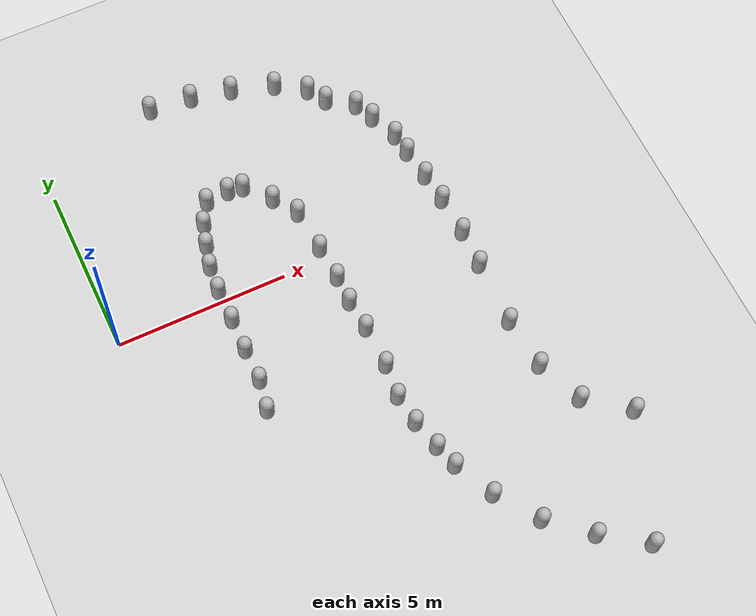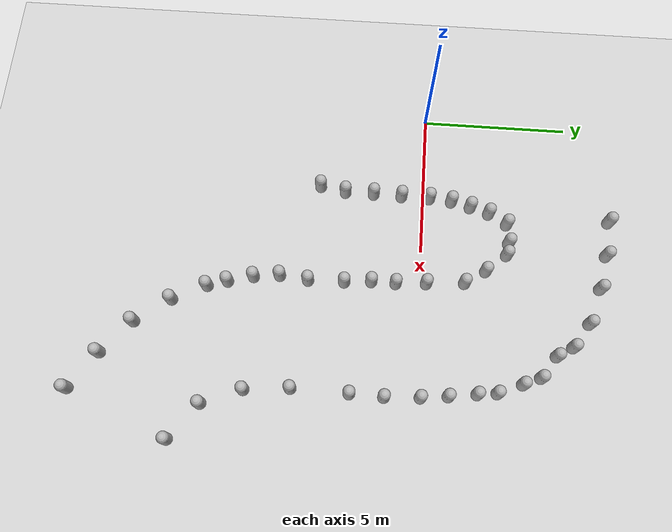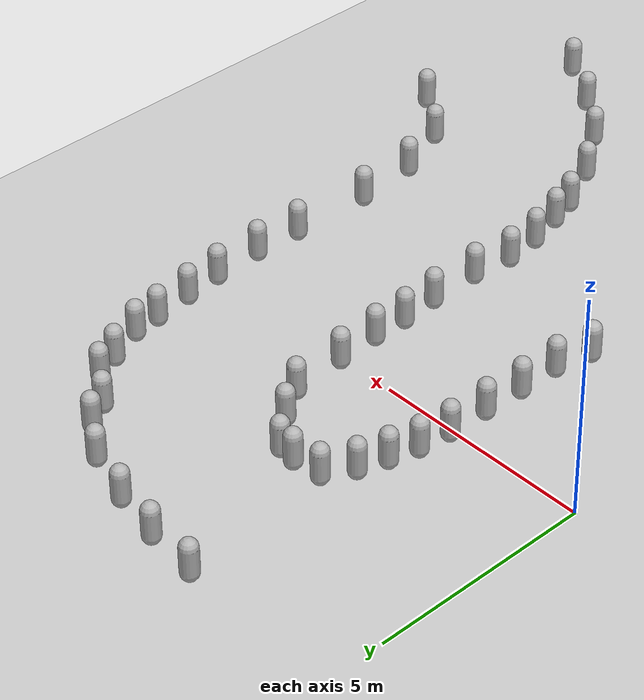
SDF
<sdf version="1.10">
 <world name="empty">
  <model name="ground_plane">
   <static>true</static>
   <link name="link">
    <collision name="collision">
     <geometry><plane><normal>0 0 1</normal><size>100 100</size></plane></geometry>
    </collision>
    <visual name="visual">
     <geometry><plane><normal>0 0 1</normal><size>100 100</size></plane></geometry>
     <material>
      <ambient>0.800000012 0.800000012 0.800000012 1</ambient>
      <diffuse>0.800000012 0.800000012 0.800000012 1</diffuse>
      <specular>0.800000012 0.800000012 0.800000012 1</specular>
     </material>
    </visual>
    <inertial>
     <mass>1</mass>
     <inertia><ixx>1</ixx><ixy>0</ixy><ixz>0</ixz><iyy>1</iyy><iyz>0</iyz><izz>1</izz></inertia>
    </inertial>
   </link>
  </model>
  <model name="capsule">
   <pose>5.0067120201532003 2.8950546282145462 0.49999999970893311 0 0 0</pose>
   <link name="capsule_link">
    <inertial>
     <inertia>
      <ixx>0.074153999999999998</ixx>
      <ixy>0</ixy>
      <ixz>0</ixz>
      <iyy>0.074153999999999998</iyy>
      <iyz>0</iyz>
      <izz>0.018769000000000001</izz>
     </inertia>
     <mass>1</mass>
    </inertial>
    <collision name="capsule_collision">
     <geometry>
      <capsule><radius>0.20000000000000001</radius><length>0.59999999999999998</length></capsule>
     </geometry>
    </collision>
    <visual name="capsule_visual">
     <geometry>
      <capsule><radius>0.20000000000000001</radius><length>0.59999999999999998</length></capsule>
     </geometry>
     <material>
      <ambient>0.300000012 0.300000012 0.300000012 1</ambient>
      <diffuse>0.699999988 0.699999988 0.699999988 1</diffuse>
      <specular>1 1 1 1</specular>
     </material>
    </visual>
   </link>
   <static>false</static>
  </model>
  <model name="capsule_1">
   <pose>6.0918446914484834 1.4883130985771231 0.49999999970893311 0 0 0</pose>
   <link name="capsule_link">
    <inertial>
     <inertia>
      <ixx>0.074153999999999998</ixx>
      <ixy>0</ixy>
      <ixz>0</ixz>
      <iyy>0.074153999999999998</iyy>
      <iyz>0</iyz>
      <izz>0.018769000000000001</izz>
     </inertia>
     <mass>1</mass>
    </inertial>
    <collision name="capsule_collision">
     <geometry>
      <capsule><radius>0.20000000000000001</radius><length>0.59999999999999998</length></capsule>
     </geometry>
    </collision>
    <visual name="capsule_visual">
     <geometry>
      <capsule><radius>0.20000000000000001</radius><length>0.59999999999999998</length></capsule>
     </geometry>
     <material>
      <ambient>0.300000012 0.300000012 0.300000012 1</ambient>
      <diffuse>0.699999988 0.699999988 0.699999988 1</diffuse>
      <specular>1 1 1 1</specular>
     </material>
    </visual>
   </link>
   <static>false</static>
  </model>
  <model name="capsule_2">
   <pose>6.2528500556945801 -0.81414926052093506 0.499999999902001 0 0 0</pose>
   <link name="capsule_link">
    <inertial>
     <inertia>
      <ixx>0.074153999999999998</ixx>
      <ixy>0</ixy>
      <ixz>0</ixz>
      <iyy>0.074153999999999998</iyy>
      <iyz>0</iyz>
      <izz>0.018769000000000001</izz>
     </inertia>
     <mass>1</mass>
    </inertial>
    <collision name="capsule_collision">
     <geometry>
      <capsule><radius>0.20000000000000001</radius><length>0.59999999999999998</length></capsule>
     </geometry>
    </collision>
    <visual name="capsule_visual">
     <geometry>
      <capsule><radius>0.20000000000000001</radius><length>0.59999999999999998</length></capsule>
     </geometry>
     <material>
      <ambient>0.300000012 0.300000012 0.300000012 1</ambient>
      <diffuse>0.699999988 0.699999988 0.699999988 1</diffuse>
      <specular>1 1 1 1</specular>
     </material>
    </visual>
   </link>
   <static>false</static>
  </model>
  <model name="capsule_3">
   <pose>6.243919849395752 -1.6323399543762207 0.499999999902001 0 0 0</pose>
   <link name="capsule_link">
    <inertial>
     <inertia>
      <ixx>0.074153999999999998</ixx>
      <ixy>0</ixy>
      <ixz>0</ixz>
      <iyy>0.074153999999999998</iyy>
      <iyz>0</iyz>
      <izz>0.018769000000000001</izz>
     </inertia>
     <mass>1</mass>
    </inertial>
    <collision name="capsule_collision">
     <geometry>
      <capsule><radius>0.20000000000000001</radius><length>0.59999999999999998</length></capsule>
     </geometry>
    </collision>
    <visual name="capsule_visual">
     <geometry>
      <capsule><radius>0.20000000000000001</radius><length>0.59999999999999998</length></capsule>
     </geometry>
     <material>
      <ambient>0.300000012 0.300000012 0.300000012 1</ambient>
      <diffuse>0.699999988 0.699999988 0.699999988 1</diffuse>
      <specular>1 1 1 1</specular>
     </material>
    </visual>
   </link>
   <static>false</static>
  </model>
  <model name="capsule_4">
   <pose>6.3168603929638234 -2.5392485538346374 0.49999999970893311 0 0 0</pose>
   <link name="capsule_link">
    <inertial>
     <inertia>
      <ixx>0.074153999999999998</ixx>
      <ixy>0</ixy>
      <ixz>0</ixz>
      <iyy>0.074153999999999998</iyy>
      <iyz>0</iyz>
      <izz>0.018769000000000001</izz>
     </inertia>
     <mass>1</mass>
    </inertial>
    <collision name="capsule_collision">
     <geometry>
      <capsule><radius>0.20000000000000001</radius><length>0.59999999999999998</length></capsule>
     </geometry>
    </collision>
    <visual name="capsule_visual">
     <geometry>
      <capsule><radius>0.20000000000000001</radius><length>0.59999999999999998</length></capsule>
     </geometry>
     <material>
      <ambient>0.300000012 0.300000012 0.300000012 1</ambient>
      <diffuse>0.699999988 0.699999988 0.699999988 1</diffuse>
      <specular>1 1 1 1</specular>
     </material>
    </visual>
   </link>
   <static>false</static>
  </model>
  <model name="capsule_5">
   <pose>6.3373173031823287 -3.7541128518168598 0.49999999970893311 0 0 0</pose>
   <link name="capsule_link">
    <inertial>
     <inertia>
      <ixx>0.074153999999999998</ixx>
      <ixy>0</ixy>
      <ixz>0</ixz>
      <iyy>0.074153999999999998</iyy>
      <iyz>0</iyz>
      <izz>0.018769000000000001</izz>
     </inertia>
     <mass>1</mass>
    </inertial>
    <collision name="capsule_collision">
     <geometry>
      <capsule><radius>0.20000000000000001</radius><length>0.59999999999999998</length></capsule>
     </geometry>
    </collision>
    <visual name="capsule_visual">
     <geometry>
      <capsule><radius>0.20000000000000001</radius><length>0.59999999999999998</length></capsule>
     </geometry>
     <material>
      <ambient>0.300000012 0.300000012 0.300000012 1</ambient>
      <diffuse>0.699999988 0.699999988 0.699999988 1</diffuse>
      <specular>1 1 1 1</specular>
     </material>
    </visual>
   </link>
   <static>false</static>
  </model>
  <model name="capsule_6">
   <pose>3.8893697356851402 2.892807902579547 0.49999999970893311 0 0 0</pose>
   <link name="capsule_link">
    <inertial>
     <inertia>
      <ixx>0.074153999999999998</ixx>
      <ixy>0</ixy>
      <ixz>0</ixz>
      <iyy>0.074153999999999998</iyy>
      <iyz>0</iyz>
      <izz>0.018769000000000001</izz>
     </inertia>
     <mass>1</mass>
    </inertial>
    <collision name="capsule_collision">
     <geometry>
      <capsule><radius>0.20000000000000001</radius><length>0.59999999999999998</length></capsule>
     </geometry>
    </collision>
    <visual name="capsule_visual">
     <geometry>
      <capsule><radius>0.20000000000000001</radius><length>0.59999999999999998</length></capsule>
     </geometry>
     <material>
      <ambient>0.300000012 0.300000012 0.300000012 1</ambient>
      <diffuse>0.699999988 0.699999988 0.699999988 1</diffuse>
      <specular>1 1 1 1</specular>
     </material>
    </visual>
   </link>
   <static>false</static>
  </model>
  <model name="capsule_7">
   <pose>3.3342243519569452 1.6304961430569558 0.49999999970893311 0 0 0</pose>
   <link name="capsule_link">
    <inertial>
     <inertia>
      <ixx>0.074153999999999998</ixx>
      <ixy>0</ixy>
      <ixz>0</ixz>
      <iyy>0.074153999999999998</iyy>
      <iyz>0</iyz>
      <izz>0.018769000000000001</izz>
     </inertia>
     <mass>1</mass>
    </inertial>
    <collision name="capsule_collision">
     <geometry>
      <capsule><radius>0.20000000000000001</radius><length>0.59999999999999998</length></capsule>
     </geometry>
    </collision>
    <visual name="capsule_visual">
     <geometry>
      <capsule><radius>0.20000000000000001</radius><length>0.59999999999999998</length></capsule>
     </geometry>
     <material>
      <ambient>0.300000012 0.300000012 0.300000012 1</ambient>
      <diffuse>0.699999988 0.699999988 0.699999988 1</diffuse>
      <specular>1 1 1 1</specular>
     </material>
    </visual>
   </link>
   <static>false</static>
  </model>
  <model name="capsule_8">
   <pose>3.1660099029541016 0.97390604019165039 0.499999999902001 0 0 0</pose>
   <link name="capsule_link">
    <inertial>
     <inertia>
      <ixx>0.074153999999999998</ixx>
      <ixy>0</ixy>
      <ixz>0</ixz>
      <iyy>0.074153999999999998</iyy>
      <iyz>0</iyz>
      <izz>0.018769000000000001</izz>
     </inertia>
     <mass>1</mass>
    </inertial>
    <collision name="capsule_collision">
     <geometry>
      <capsule><radius>0.20000000000000001</radius><length>0.59999999999999998</length></capsule>
     </geometry>
    </collision>
    <visual name="capsule_visual">
     <geometry>
      <capsule><radius>0.20000000000000001</radius><length>0.59999999999999998</length></capsule>
     </geometry>
     <material>
      <ambient>0.300000012 0.300000012 0.300000012 1</ambient>
      <diffuse>0.699999988 0.699999988 0.699999988 1</diffuse>
      <specular>1 1 1 1</specular>
     </material>
    </visual>
   </link>
   <static>false</static>
  </model>
  <model name="capsule_9">
   <pose>3.0937800407409668 0.21299627423286438 0.499999999902001 0 0 0</pose>
   <link name="capsule_link">
    <inertial>
     <inertia>
      <ixx>0.074153999999999998</ixx>
      <ixy>0</ixy>
      <ixz>0</ixz>
      <iyy>0.074153999999999998</iyy>
      <iyz>0</iyz>
      <izz>0.018769000000000001</izz>
     </inertia>
     <mass>1</mass>
    </inertial>
    <collision name="capsule_collision">
     <geometry>
      <capsule><radius>0.20000000000000001</radius><length>0.59999999999999998</length></capsule>
     </geometry>
    </collision>
    <visual name="capsule_visual">
     <geometry>
      <capsule><radius>0.20000000000000001</radius><length>0.59999999999999998</length></capsule>
     </geometry>
     <material>
      <ambient>0.300000012 0.300000012 0.300000012 1</ambient>
      <diffuse>0.699999988 0.699999988 0.699999988 1</diffuse>
      <specular>1 1 1 1</specular>
     </material>
    </visual>
   </link>
   <static>false</static>
  </model>
  <model name="capsule_10">
   <pose>3.052570104598999 -1.7299884557723999 0.499999999902001 0 0 0</pose>
   <link name="capsule_link">
    <inertial>
     <inertia>
      <ixx>0.074153999999999998</ixx>
      <ixy>0</ixy>
      <ixz>0</ixz>
      <iyy>0.074153999999999998</iyy>
      <iyz>0</iyz>
      <izz>0.018769000000000001</izz>
     </inertia>
     <mass>1</mass>
    </inertial>
    <collision name="capsule_collision">
     <geometry>
      <capsule><radius>0.20000000000000001</radius><length>0.59999999999999998</length></capsule>
     </geometry>
    </collision>
    <visual name="capsule_visual">
     <geometry>
      <capsule><radius>0.20000000000000001</radius><length>0.59999999999999998</length></capsule>
     </geometry>
     <material>
      <ambient>0.300000012 0.300000012 0.300000012 1</ambient>
      <diffuse>0.699999988 0.699999988 0.699999988 1</diffuse>
      <specular>1 1 1 1</specular>
     </material>
    </visual>
   </link>
   <static>false</static>
  </model>
  <model name="capsule_11">
   <pose>2.8815019130706787 -3.5840599536895752 0.499999999902001 0 0 0</pose>
   <link name="capsule_link">
    <inertial>
     <inertia>
      <ixx>0.074153999999999998</ixx>
      <ixy>0</ixy>
      <ixz>0</ixz>
      <iyy>0.074153999999999998</iyy>
      <iyz>0</iyz>
      <izz>0.018769000000000001</izz>
     </inertia>
     <mass>1</mass>
    </inertial>
    <collision name="capsule_collision">
     <geometry>
      <capsule><radius>0.20000000000000001</radius><length>0.59999999999999998</length></capsule>
     </geometry>
    </collision>
    <visual name="capsule_visual">
     <geometry>
      <capsule><radius>0.20000000000000001</radius><length>0.59999999999999998</length></capsule>
     </geometry>
     <material>
      <ambient>0.300000012 0.300000012 0.300000012 1</ambient>
      <diffuse>0.699999988 0.699999988 0.699999988 1</diffuse>
      <specular>1 1 1 1</specular>
     </material>
    </visual>
   </link>
   <static>false</static>
  </model>
  <model name="capsule_12">
   <pose>9.9779636401044876 -4.026470124686111 0.49999999970893311 0 0 0</pose>
   <link name="capsule_link">
    <inertial>
     <inertia>
      <ixx>0.074153999999999998</ixx>
      <ixy>0</ixy>
      <ixz>0</ixz>
      <iyy>0.074153999999999998</iyy>
      <iyz>0</iyz>
      <izz>0.018769000000000001</izz>
     </inertia>
     <mass>1</mass>
    </inertial>
    <collision name="capsule_collision">
     <geometry>
      <capsule><radius>0.20000000000000001</radius><length>0.59999999999999998</length></capsule>
     </geometry>
    </collision>
    <visual name="capsule_visual">
     <geometry>
      <capsule><radius>0.20000000000000001</radius><length>0.59999999999999998</length></capsule>
     </geometry>
     <material>
      <ambient>0.300000012 0.300000012 0.300000012 1</ambient>
      <diffuse>0.699999988 0.699999988 0.699999988 1</diffuse>
      <specular>1 1 1 1</specular>
     </material>
    </visual>
   </link>
   <static>false</static>
  </model>
  <model name="capsule_13">
   <pose>10.02226374670887 -2.131533841577105 0.49999999970893311 0 0 0</pose>
   <link name="capsule_link">
    <inertial>
     <inertia>
      <ixx>0.074153999999999998</ixx>
      <ixy>0</ixy>
      <ixz>0</ixz>
      <iyy>0.074153999999999998</iyy>
      <iyz>0</iyz>
      <izz>0.018769000000000001</izz>
     </inertia>
     <mass>1</mass>
    </inertial>
    <collision name="capsule_collision">
     <geometry>
      <capsule><radius>0.20000000000000001</radius><length>0.59999999999999998</length></capsule>
     </geometry>
    </collision>
    <visual name="capsule_visual">
     <geometry>
      <capsule><radius>0.20000000000000001</radius><length>0.59999999999999998</length></capsule>
     </geometry>
     <material>
      <ambient>0.300000012 0.300000012 0.300000012 1</ambient>
      <diffuse>0.699999988 0.699999988 0.699999988 1</diffuse>
      <specular>1 1 1 1</specular>
     </material>
    </visual>
   </link>
   <static>false</static>
  </model>
  <model name="capsule_14">
   <pose>10.001105701659302 0.14882972912458661 0.49999999970893311 0 0 0</pose>
   <link name="capsule_link">
    <inertial>
     <inertia>
      <ixx>0.074153999999999998</ixx>
      <ixy>0</ixy>
      <ixz>0</ixz>
      <iyy>0.074153999999999998</iyy>
      <iyz>0</iyz>
      <izz>0.018769000000000001</izz>
     </inertia>
     <mass>1</mass>
    </inertial>
    <collision name="capsule_collision">
     <geometry>
      <capsule><radius>0.20000000000000001</radius><length>0.59999999999999998</length></capsule>
     </geometry>
    </collision>
    <visual name="capsule_visual">
     <geometry>
      <capsule><radius>0.20000000000000001</radius><length>0.59999999999999998</length></capsule>
     </geometry>
     <material>
      <ambient>0.300000012 0.300000012 0.300000012 1</ambient>
      <diffuse>0.699999988 0.699999988 0.699999988 1</diffuse>
      <specular>1 1 1 1</specular>
     </material>
    </visual>
   </link>
   <static>false</static>
  </model>
  <model name="capsule_15">
   <pose>9.7759025483170632 1.9615490699600033 0.49999999970893311 0 0 0</pose>
   <link name="capsule_link">
    <inertial>
     <inertia>
      <ixx>0.074153999999999998</ixx>
      <ixy>0</ixy>
      <ixz>0</ixz>
      <iyy>0.074153999999999998</iyy>
      <iyz>0</iyz>
      <izz>0.018769000000000001</izz>
     </inertia>
     <mass>1</mass>
    </inertial>
    <collision name="capsule_collision">
     <geometry>
      <capsule><radius>0.20000000000000001</radius><length>0.59999999999999998</length></capsule>
     </geometry>
    </collision>
    <visual name="capsule_visual">
     <geometry>
      <capsule><radius>0.20000000000000001</radius><length>0.59999999999999998</length></capsule>
     </geometry>
     <material>
      <ambient>0.300000012 0.300000012 0.300000012 1</ambient>
      <diffuse>0.699999988 0.699999988 0.699999988 1</diffuse>
      <specular>1 1 1 1</specular>
     </material>
    </visual>
   </link>
   <static>false</static>
  </model>
  <model name="capsule_16">
   <pose>9.362642894293721 3.4224772201174152 0.49999999970893311 0 0 0</pose>
   <link name="capsule_link">
    <inertial>
     <inertia>
      <ixx>0.074153999999999998</ixx>
      <ixy>0</ixy>
      <ixz>0</ixz>
      <iyy>0.074153999999999998</iyy>
      <iyz>0</iyz>
      <izz>0.018769000000000001</izz>
     </inertia>
     <mass>1</mass>
    </inertial>
    <collision name="capsule_collision">
     <geometry>
      <capsule><radius>0.20000000000000001</radius><length>0.59999999999999998</length></capsule>
     </geometry>
    </collision>
    <visual name="capsule_visual">
     <geometry>
      <capsule><radius>0.20000000000000001</radius><length>0.59999999999999998</length></capsule>
     </geometry>
     <material>
      <ambient>0.300000012 0.300000012 0.300000012 1</ambient>
      <diffuse>0.699999988 0.699999988 0.699999988 1</diffuse>
      <specular>1 1 1 1</specular>
     </material>
    </visual>
   </link>
   <static>false</static>
  </model>
  <model name="capsule_17">
   <pose>8.3764287410841902 4.5237605050009844 0.49999999970893311 0 0 0</pose>
   <link name="capsule_link">
    <inertial>
     <inertia>
      <ixx>0.074153999999999998</ixx>
      <ixy>0</ixy>
      <ixz>0</ixz>
      <iyy>0.074153999999999998</iyy>
      <iyz>0</iyz>
      <izz>0.018769000000000001</izz>
     </inertia>
     <mass>1</mass>
    </inertial>
    <collision name="capsule_collision">
     <geometry>
      <capsule><radius>0.20000000000000001</radius><length>0.59999999999999998</length></capsule>
     </geometry>
    </collision>
    <visual name="capsule_visual">
     <geometry>
      <capsule><radius>0.20000000000000001</radius><length>0.59999999999999998</length></capsule>
     </geometry>
     <material>
      <ambient>0.300000012 0.300000012 0.300000012 1</ambient>
      <diffuse>0.699999988 0.699999988 0.699999988 1</diffuse>
      <specular>1 1 1 1</specular>
     </material>
    </visual>
   </link>
   <static>false</static>
  </model>
  <model name="capsule_18">
   <pose>7.2165150779495999 5.6198774742734647 0.49999999970893311 0 0 0</pose>
   <link name="capsule_link">
    <inertial>
     <inertia>
      <ixx>0.074153999999999998</ixx>
      <ixy>0</ixy>
      <ixz>0</ixz>
      <iyy>0.074153999999999998</iyy>
      <iyz>0</iyz>
      <izz>0.018769000000000001</izz>
     </inertia>
     <mass>1</mass>
    </inertial>
    <collision name="capsule_collision">
     <geometry>
      <capsule><radius>0.20000000000000001</radius><length>0.59999999999999998</length></capsule>
     </geometry>
    </collision>
    <visual name="capsule_visual">
     <geometry>
      <capsule><radius>0.20000000000000001</radius><length>0.59999999999999998</length></capsule>
     </geometry>
     <material>
      <ambient>0.300000012 0.300000012 0.300000012 1</ambient>
      <diffuse>0.699999988 0.699999988 0.699999988 1</diffuse>
      <specular>1 1 1 1</specular>
     </material>
    </visual>
   </link>
   <static>false</static>
  </model>
  <model name="capsule_19">
   <pose>5.9928646797740672 6.0196110714190141 0.49999999970893311 0 0 0</pose>
   <link name="capsule_link">
    <inertial>
     <inertia>
      <ixx>0.074153999999999998</ixx>
      <ixy>0</ixy>
      <ixz>0</ixz>
      <iyy>0.074153999999999998</iyy>
      <iyz>0</iyz>
      <izz>0.018769000000000001</izz>
     </inertia>
     <mass>1</mass>
    </inertial>
    <collision name="capsule_collision">
     <geometry>
      <capsule><radius>0.20000000000000001</radius><length>0.59999999999999998</length></capsule>
     </geometry>
    </collision>
    <visual name="capsule_visual">
     <geometry>
      <capsule><radius>0.20000000000000001</radius><length>0.59999999999999998</length></capsule>
     </geometry>
     <material>
      <ambient>0.300000012 0.300000012 0.300000012 1</ambient>
      <diffuse>0.699999988 0.699999988 0.699999988 1</diffuse>
      <specular>1 1 1 1</specular>
     </material>
    </visual>
   </link>
   <static>false</static>
  </model>
  <model name="capsule_20">
   <pose>4.8129751771360949 6.2641878366718666 0.49999999970893311 0 0 0</pose>
   <link name="capsule_link">
    <inertial>
     <inertia>
      <ixx>0.074153999999999998</ixx>
      <ixy>0</ixy>
      <ixz>0</ixz>
      <iyy>0.074153999999999998</iyy>
      <iyz>0</iyz>
      <izz>0.018769000000000001</izz>
     </inertia>
     <mass>1</mass>
    </inertial>
    <collision name="capsule_collision">
     <geometry>
      <capsule><radius>0.20000000000000001</radius><length>0.59999999999999998</length></capsule>
     </geometry>
    </collision>
    <visual name="capsule_visual">
     <geometry>
      <capsule><radius>0.20000000000000001</radius><length>0.59999999999999998</length></capsule>
     </geometry>
     <material>
      <ambient>0.300000012 0.300000012 0.300000012 1</ambient>
      <diffuse>0.699999988 0.699999988 0.699999988 1</diffuse>
      <specular>1 1 1 1</specular>
     </material>
    </visual>
   </link>
   <static>false</static>
  </model>
  <model name="capsule_21">
   <pose>3.5784910898476814 6.3930733778430691 0.49999999970893311 0 0 0</pose>
   <link name="capsule_link">
    <inertial>
     <inertia>
      <ixx>0.074153999999999998</ixx>
      <ixy>0</ixy>
      <ixz>0</ixz>
      <iyy>0.074153999999999998</iyy>
      <iyz>0</iyz>
      <izz>0.018769000000000001</izz>
     </inertia>
     <mass>1</mass>
    </inertial>
    <collision name="capsule_collision">
     <geometry>
      <capsule><radius>0.20000000000000001</radius><length>0.59999999999999998</length></capsule>
     </geometry>
    </collision>
    <visual name="capsule_visual">
     <geometry>
      <capsule><radius>0.20000000000000001</radius><length>0.59999999999999998</length></capsule>
     </geometry>
     <material>
      <ambient>0.300000012 0.300000012 0.300000012 1</ambient>
      <diffuse>0.699999988 0.699999988 0.699999988 1</diffuse>
      <specular>1 1 1 1</specular>
     </material>
    </visual>
   </link>
   <static>false</static>
  </model>
  <model name="capsule_60">
   <pose>6.3314919959247762 -5.590667238932638 0.49999999970893311 0 0 0</pose>
   <link name="capsule_link">
    <inertial>
     <inertia>
      <ixx>0.074153999999999998</ixx>
      <ixy>0</ixy>
      <ixz>0</ixz>
      <iyy>0.074153999999999998</iyy>
      <iyz>0</iyz>
      <izz>0.018769000000000001</izz>
     </inertia>
     <mass>1</mass>
    </inertial>
    <collision name="capsule_collision">
     <geometry>
      <capsule><radius>0.20000000000000001</radius><length>0.59999999999999998</length></capsule>
     </geometry>
    </collision>
    <visual name="capsule_visual">
     <geometry>
      <capsule><radius>0.20000000000000001</radius><length>0.59999999999999998</length></capsule>
     </geometry>
     <material>
      <ambient>0.300000012 0.300000012 0.300000012 1</ambient>
      <diffuse>0.699999988 0.699999988 0.699999988 1</diffuse>
      <specular>1 1 1 1</specular>
     </material>
    </visual>
   </link>
   <static>false</static>
  </model>
  <model name="capsule_61">
   <pose>10.11741301168127 -5.5325644207378035 0.49999999970893311 0 0 0</pose>
   <link name="capsule_link">
    <inertial>
     <inertia>
      <ixx>0.074153999999999998</ixx>
      <ixy>0</ixy>
      <ixz>0</ixz>
      <iyy>0.074153999999999998</iyy>
      <iyz>0</iyz>
      <izz>0.018769000000000001</izz>
     </inertia>
     <mass>1</mass>
    </inertial>
    <collision name="capsule_collision">
     <geometry>
      <capsule><radius>0.20000000000000001</radius><length>0.59999999999999998</length></capsule>
     </geometry>
    </collision>
    <visual name="capsule_visual">
     <geometry>
      <capsule><radius>0.20000000000000001</radius><length>0.59999999999999998</length></capsule>
     </geometry>
     <material>
      <ambient>0.300000012 0.300000012 0.300000012 1</ambient>
      <diffuse>0.699999988 0.699999988 0.699999988 1</diffuse>
      <specular>1 1 1 1</specular>
     </material>
    </visual>
   </link>
   <static>false</static>
  </model>
  <model name="capsule_62">
   <pose>10.644863435152994 -6.8593919314908725 0.49999999970893311 0 0 0</pose>
   <link name="capsule_link">
    <inertial>
     <inertia>
      <ixx>0.074153999999999998</ixx>
      <ixy>0</ixy>
      <ixz>0</ixz>
      <iyy>0.074153999999999998</iyy>
      <iyz>0</iyz>
      <izz>0.018769000000000001</izz>
     </inertia>
     <mass>1</mass>
    </inertial>
    <collision name="capsule_collision">
     <geometry>
      <capsule><radius>0.20000000000000001</radius><length>0.59999999999999998</length></capsule>
     </geometry>
    </collision>
    <visual name="capsule_visual">
     <geometry>
      <capsule><radius>0.20000000000000001</radius><length>0.59999999999999998</length></capsule>
     </geometry>
     <material>
      <ambient>0.300000012 0.300000012 0.300000012 1</ambient>
      <diffuse>0.699999988 0.699999988 0.699999988 1</diffuse>
      <specular>1 1 1 1</specular>
     </material>
    </visual>
   </link>
   <static>false</static>
  </model>
  <model name="capsule_63">
   <pose>6.7479515674650221 -7.1104412985510148 0.49999999970893311 0 0 0</pose>
   <link name="capsule_link">
    <inertial>
     <inertia>
      <ixx>0.074153999999999998</ixx>
      <ixy>0</ixy>
      <ixz>0</ixz>
      <iyy>0.074153999999999998</iyy>
      <iyz>0</iyz>
      <izz>0.018769000000000001</izz>
     </inertia>
     <mass>1</mass>
    </inertial>
    <collision name="capsule_collision">
     <geometry>
      <capsule><radius>0.20000000000000001</radius><length>0.59999999999999998</length></capsule>
     </geometry>
    </collision>
    <visual name="capsule_visual">
     <geometry>
      <capsule><radius>0.20000000000000001</radius><length>0.59999999999999998</length></capsule>
     </geometry>
     <material>
      <ambient>0.300000012 0.300000012 0.300000012 1</ambient>
      <diffuse>0.699999988 0.699999988 0.699999988 1</diffuse>
      <specular>1 1 1 1</specular>
     </material>
    </visual>
   </link>
   <static>false</static>
  </model>
  <model name="capsule_64">
   <pose>7.2963945963359151 -8.240016975941133 0.49999999970893311 0 0 0</pose>
   <link name="capsule_link">
    <inertial>
     <inertia>
      <ixx>0.074153999999999998</ixx>
      <ixy>0</ixy>
      <ixz>0</ixz>
      <iyy>0.074153999999999998</iyy>
      <iyz>0</iyz>
      <izz>0.018769000000000001</izz>
     </inertia>
     <mass>1</mass>
    </inertial>
    <collision name="capsule_collision">
     <geometry>
      <capsule><radius>0.20000000000000001</radius><length>0.59999999999999998</length></capsule>
     </geometry>
    </collision>
    <visual name="capsule_visual">
     <geometry>
      <capsule><radius>0.20000000000000001</radius><length>0.59999999999999998</length></capsule>
     </geometry>
     <material>
      <ambient>0.300000012 0.300000012 0.300000012 1</ambient>
      <diffuse>0.699999988 0.699999988 0.699999988 1</diffuse>
      <specular>1 1 1 1</specular>
     </material>
    </visual>
   </link>
   <static>false</static>
  </model>
  <model name="capsule_65">
   <pose>8.1228659711914588 -9.3929300923327759 0.49999999970893311 0 0 0</pose>
   <link name="capsule_link">
    <inertial>
     <inertia>
      <ixx>0.074153999999999998</ixx>
      <ixy>0</ixy>
      <ixz>0</ixz>
      <iyy>0.074153999999999998</iyy>
      <iyz>0</iyz>
      <izz>0.018769000000000001</izz>
     </inertia>
     <mass>1</mass>
    </inertial>
    <collision name="capsule_collision">
     <geometry>
      <capsule><radius>0.20000000000000001</radius><length>0.59999999999999998</length></capsule>
     </geometry>
    </collision>
    <visual name="capsule_visual">
     <geometry>
      <capsule><radius>0.20000000000000001</radius><length>0.59999999999999998</length></capsule>
     </geometry>
     <material>
      <ambient>0.300000012 0.300000012 0.300000012 1</ambient>
      <diffuse>0.699999988 0.699999988 0.699999988 1</diffuse>
      <specular>1 1 1 1</specular>
     </material>
    </visual>
   </link>
   <static>false</static>
  </model>
  <model name="capsule_66">
   <pose>9.2258935134949915 -10.349220092928032 0.49999999970893311 0 0 0</pose>
   <link name="capsule_link">
    <inertial>
     <inertia>
      <ixx>0.074153999999999998</ixx>
      <ixy>0</ixy>
      <ixz>0</ixz>
      <iyy>0.074153999999999998</iyy>
      <iyz>0</iyz>
      <izz>0.018769000000000001</izz>
     </inertia>
     <mass>1</mass>
    </inertial>
    <collision name="capsule_collision">
     <geometry>
      <capsule><radius>0.20000000000000001</radius><length>0.59999999999999998</length></capsule>
     </geometry>
    </collision>
    <visual name="capsule_visual">
     <geometry>
      <capsule><radius>0.20000000000000001</radius><length>0.59999999999999998</length></capsule>
     </geometry>
     <material>
      <ambient>0.300000012 0.300000012 0.300000012 1</ambient>
      <diffuse>0.699999988 0.699999988 0.699999988 1</diffuse>
      <specular>1 1 1 1</specular>
     </material>
    </visual>
   </link>
   <static>false</static>
  </model>
  <model name="capsule_67">
   <pose>10.440839469349417 -11.195331756799842 0.49999999970893311 0 0 0</pose>
   <link name="capsule_link">
    <inertial>
     <inertia>
      <ixx>0.074153999999999998</ixx>
      <ixy>0</ixy>
      <ixz>0</ixz>
      <iyy>0.074153999999999998</iyy>
      <iyz>0</iyz>
      <izz>0.018769000000000001</izz>
     </inertia>
     <mass>1</mass>
    </inertial>
    <collision name="capsule_collision">
     <geometry>
      <capsule><radius>0.20000000000000001</radius><length>0.59999999999999998</length></capsule>
     </geometry>
    </collision>
    <visual name="capsule_visual">
     <geometry>
      <capsule><radius>0.20000000000000001</radius><length>0.59999999999999998</length></capsule>
     </geometry>
     <material>
      <ambient>0.300000012 0.300000012 0.300000012 1</ambient>
      <diffuse>0.699999988 0.699999988 0.699999988 1</diffuse>
      <specular>1 1 1 1</specular>
     </material>
    </visual>
   </link>
   <static>false</static>
  </model>
  <model name="capsule_68">
   <pose>11.81976249762786 -7.7683201869391816 0.49999999970893311 0 0 0</pose>
   <link name="capsule_link">
    <inertial>
     <inertia>
      <ixx>0.074153999999999998</ixx>
      <ixy>0</ixy>
      <ixz>0</ixz>
      <iyy>0.074153999999999998</iyy>
      <iyz>0</iyz>
      <izz>0.018769000000000001</izz>
     </inertia>
     <mass>1</mass>
    </inertial>
    <collision name="capsule_collision">
     <geometry>
      <capsule><radius>0.20000000000000001</radius><length>0.59999999999999998</length></capsule>
     </geometry>
    </collision>
    <visual name="capsule_visual">
     <geometry>
      <capsule><radius>0.20000000000000001</radius><length>0.59999999999999998</length></capsule>
     </geometry>
     <material>
      <ambient>0.300000012 0.300000012 0.300000012 1</ambient>
      <diffuse>0.699999988 0.699999988 0.699999988 1</diffuse>
      <specular>1 1 1 1</specular>
     </material>
    </visual>
   </link>
   <static>false</static>
  </model>
  <model name="capsule_38_6">
   <pose>3.0804922580718994 -0.7584490180015564 0.499999999902001 0 0 0</pose>
   <link name="capsule_link">
    <inertial>
     <inertia>
      <ixx>0.074153999999999998</ixx>
      <ixy>0</ixy>
      <ixz>0</ixz>
      <iyy>0.074153999999999998</iyy>
      <iyz>0</iyz>
      <izz>0.018769000000000001</izz>
     </inertia>
     <mass>1</mass>
    </inertial>
    <collision name="capsule_collision">
     <geometry>
      <capsule><radius>0.20000000000000001</radius><length>0.59999999999999998</length></capsule>
     </geometry>
    </collision>
    <visual name="capsule_visual">
     <geometry>
      <capsule><radius>0.20000000000000001</radius><length>0.59999999999999998</length></capsule>
     </geometry>
     <material>
      <ambient>0.300000012 0.300000012 0.300000012 1</ambient>
      <diffuse>0.699999988 0.699999988 0.699999988 1</diffuse>
      <specular>1 1 1 1</specular>
     </material>
    </visual>
   </link>
   <static>false</static>
  </model>
  <model name="capsule_38_7">
   <pose>3.0495100021362305 -2.7139229774475098 0.499999999902001 0 0 0</pose>
   <link name="capsule_link">
    <inertial>
     <inertia>
      <ixx>0.074153999999999998</ixx>
      <ixy>0</ixy>
      <ixz>0</ixz>
      <iyy>0.074153999999999998</iyy>
      <iyz>0</iyz>
      <izz>0.018769000000000001</izz>
     </inertia>
     <mass>1</mass>
    </inertial>
    <collision name="capsule_collision">
     <geometry>
      <capsule><radius>0.20000000000000001</radius><length>0.59999999999999998</length></capsule>
     </geometry>
    </collision>
    <visual name="capsule_visual">
     <geometry>
      <capsule><radius>0.20000000000000001</radius><length>0.59999999999999998</length></capsule>
     </geometry>
     <material>
      <ambient>0.300000012 0.300000012 0.300000012 1</ambient>
      <diffuse>0.699999988 0.699999988 0.699999988 1</diffuse>
      <specular>1 1 1 1</specular>
     </material>
    </visual>
   </link>
   <static>false</static>
  </model>
  <model name="capsule_38_8">
   <pose>5.6302345674589258 2.1911713154369741 0.49999999980498194 0 0 0</pose>
   <link name="capsule_link">
    <inertial>
     <inertia>
      <ixx>0.074153999999999998</ixx>
      <ixy>0</ixy>
      <ixz>0</ixz>
      <iyy>0.074153999999999998</iyy>
      <iyz>0</iyz>
      <izz>0.018769000000000001</izz>
     </inertia>
     <mass>1</mass>
    </inertial>
    <collision name="capsule_collision">
     <geometry>
      <capsule><radius>0.20000000000000001</radius><length>0.59999999999999998</length></capsule>
     </geometry>
    </collision>
    <visual name="capsule_visual">
     <geometry>
      <capsule><radius>0.20000000000000001</radius><length>0.59999999999999998</length></capsule>
     </geometry>
     <material>
      <ambient>0.300000012 0.300000012 0.300000012 1</ambient>
      <diffuse>0.699999988 0.699999988 0.699999988 1</diffuse>
      <specular>1 1 1 1</specular>
     </material>
    </visual>
   </link>
   <static>false</static>
  </model>
  <model name="capsule_38_9">
   <pose>6.1898999214172363 0.2068728506565094 0.499999999902001 0 0 0</pose>
   <link name="capsule_link">
    <inertial>
     <inertia>
      <ixx>0.074153999999999998</ixx>
      <ixy>0</ixy>
      <ixz>0</ixz>
      <iyy>0.074153999999999998</iyy>
      <iyz>0</iyz>
      <izz>0.018769000000000001</izz>
     </inertia>
     <mass>1</mass>
    </inertial>
    <collision name="capsule_collision">
     <geometry>
      <capsule><radius>0.20000000000000001</radius><length>0.59999999999999998</length></capsule>
     </geometry>
    </collision>
    <visual name="capsule_visual">
     <geometry>
      <capsule><radius>0.20000000000000001</radius><length>0.59999999999999998</length></capsule>
     </geometry>
     <material>
      <ambient>0.300000012 0.300000012 0.300000012 1</ambient>
      <diffuse>0.699999988 0.699999988 0.699999988 1</diffuse>
      <specular>1 1 1 1</specular>
     </material>
    </visual>
   </link>
   <static>false</static>
  </model>
  <model name="capsule_38_10">
   <pose>10.057748138936249 -1.0164653281757277 0.49999999980498194 0 0 0</pose>
   <link name="capsule_link">
    <inertial>
     <inertia>
      <ixx>0.074153999999999998</ixx>
      <ixy>0</ixy>
      <ixz>0</ixz>
      <iyy>0.074153999999999998</iyy>
      <iyz>0</iyz>
      <izz>0.018769000000000001</izz>
     </inertia>
     <mass>1</mass>
    </inertial>
    <collision name="capsule_collision">
     <geometry>
      <capsule><radius>0.20000000000000001</radius><length>0.59999999999999998</length></capsule>
     </geometry>
    </collision>
    <visual name="capsule_visual">
     <geometry>
      <capsule><radius>0.20000000000000001</radius><length>0.59999999999999998</length></capsule>
     </geometry>
     <material>
      <ambient>0.300000012 0.300000012 0.300000012 1</ambient>
      <diffuse>0.699999988 0.699999988 0.699999988 1</diffuse>
      <specular>1 1 1 1</specular>
     </material>
    </visual>
   </link>
   <static>false</static>
  </model>
  <model name="capsule_38_11">
   <pose>6.2315090613109092 -4.7152401779612045 0.49999999980498194 0 0 0</pose>
   <link name="capsule_link">
    <inertial>
     <inertia>
      <ixx>0.074153999999999998</ixx>
      <ixy>0</ixy>
      <ixz>0</ixz>
      <iyy>0.074153999999999998</iyy>
      <iyz>0</iyz>
      <izz>0.018769000000000001</izz>
     </inertia>
     <mass>1</mass>
    </inertial>
    <collision name="capsule_collision">
     <geometry>
      <capsule><radius>0.20000000000000001</radius><length>0.59999999999999998</length></capsule>
     </geometry>
    </collision>
    <visual name="capsule_visual">
     <geometry>
      <capsule><radius>0.20000000000000001</radius><length>0.59999999999999998</length></capsule>
     </geometry>
     <material>
      <ambient>0.300000012 0.300000012 0.300000012 1</ambient>
      <diffuse>0.699999988 0.699999988 0.699999988 1</diffuse>
      <specular>1 1 1 1</specular>
     </material>
    </visual>
   </link>
   <static>false</static>
  </model>
  <model name="capsule_38_12">
   <pose>6.5513221531392958 -6.4425884682645211 0.49999999980498194 0 0 0</pose>
   <link name="capsule_link">
    <inertial>
     <inertia>
      <ixx>0.074153999999999998</ixx>
      <ixy>0</ixy>
      <ixz>0</ixz>
      <iyy>0.074153999999999998</iyy>
      <iyz>0</iyz>
      <izz>0.018769000000000001</izz>
     </inertia>
     <mass>1</mass>
    </inertial>
    <collision name="capsule_collision">
     <geometry>
      <capsule><radius>0.20000000000000001</radius><length>0.59999999999999998</length></capsule>
     </geometry>
    </collision>
    <visual name="capsule_visual">
     <geometry>
      <capsule><radius>0.20000000000000001</radius><length>0.59999999999999998</length></capsule>
     </geometry>
     <material>
      <ambient>0.300000012 0.300000012 0.300000012 1</ambient>
      <diffuse>0.699999988 0.699999988 0.699999988 1</diffuse>
      <specular>1 1 1 1</specular>
     </material>
    </visual>
   </link>
   <static>false</static>
  </model>
  <model name="capsule_38_14">
   <pose>3.5306845825322952 2.2712890370061345 0.49999999980498194 0 0 0</pose>
   <link name="capsule_link">
    <inertial>
     <inertia>
      <ixx>0.074153999999999998</ixx>
      <ixy>0</ixy>
      <ixz>0</ixz>
      <iyy>0.074153999999999998</iyy>
      <iyz>0</iyz>
      <izz>0.018769000000000001</izz>
     </inertia>
     <mass>1</mass>
    </inertial>
    <collision name="capsule_collision">
     <geometry>
      <capsule><radius>0.20000000000000001</radius><length>0.59999999999999998</length></capsule>
     </geometry>
    </collision>
    <visual name="capsule_visual">
     <geometry>
      <capsule><radius>0.20000000000000001</radius><length>0.59999999999999998</length></capsule>
     </geometry>
     <material>
      <ambient>0.300000012 0.300000012 0.300000012 1</ambient>
      <diffuse>0.699999988 0.699999988 0.699999988 1</diffuse>
      <specular>1 1 1 1</specular>
     </material>
    </visual>
   </link>
   <static>false</static>
  </model>
  <model name="capsule_38_15">
   <pose>8.0413461364460233 5.0705631896668377 0.49999999980498194 0 0 0</pose>
   <link name="capsule_link">
    <inertial>
     <inertia>
      <ixx>0.074153999999999998</ixx>
      <ixy>0</ixy>
      <ixz>0</ixz>
      <iyy>0.074153999999999998</iyy>
      <iyz>0</iyz>
      <izz>0.018769000000000001</izz>
     </inertia>
     <mass>1</mass>
    </inertial>
    <collision name="capsule_collision">
     <geometry>
      <capsule><radius>0.20000000000000001</radius><length>0.59999999999999998</length></capsule>
     </geometry>
    </collision>
    <visual name="capsule_visual">
     <geometry>
      <capsule><radius>0.20000000000000001</radius><length>0.59999999999999998</length></capsule>
     </geometry>
     <material>
      <ambient>0.300000012 0.300000012 0.300000012 1</ambient>
      <diffuse>0.699999988 0.699999988 0.699999988 1</diffuse>
      <specular>1 1 1 1</specular>
     </material>
    </visual>
   </link>
   <static>false</static>
  </model>
  <model name="capsule_38_16">
   <pose>9.7006023753217612 2.6035184286199806 0.49999999980498194 0 0 0</pose>
   <link name="capsule_link">
    <inertial>
     <inertia>
      <ixx>0.074153999999999998</ixx>
      <ixy>0</ixy>
      <ixz>0</ixz>
      <iyy>0.074153999999999998</iyy>
      <iyz>0</iyz>
      <izz>0.018769000000000001</izz>
     </inertia>
     <mass>1</mass>
    </inertial>
    <collision name="capsule_collision">
     <geometry>
      <capsule><radius>0.20000000000000001</radius><length>0.59999999999999998</length></capsule>
     </geometry>
    </collision>
    <visual name="capsule_visual">
     <geometry>
      <capsule><radius>0.20000000000000001</radius><length>0.59999999999999998</length></capsule>
     </geometry>
     <material>
      <ambient>0.300000012 0.300000012 0.300000012 1</ambient>
      <diffuse>0.699999988 0.699999988 0.699999988 1</diffuse>
      <specular>1 1 1 1</specular>
     </material>
    </visual>
   </link>
   <static>false</static>
  </model>
  <model name="capsule_38_17">
   <pose>9.1121031519608149 4.005266992229255 0.49999999980498194 0 0 0</pose>
   <link name="capsule_link">
    <inertial>
     <inertia>
      <ixx>0.074153999999999998</ixx>
      <ixy>0</ixy>
      <ixz>0</ixz>
      <iyy>0.074153999999999998</iyy>
      <iyz>0</iyz>
      <izz>0.018769000000000001</izz>
     </inertia>
     <mass>1</mass>
    </inertial>
    <collision name="capsule_collision">
     <geometry>
      <capsule><radius>0.20000000000000001</radius><length>0.59999999999999998</length></capsule>
     </geometry>
    </collision>
    <visual name="capsule_visual">
     <geometry>
      <capsule><radius>0.20000000000000001</radius><length>0.59999999999999998</length></capsule>
     </geometry>
     <material>
      <ambient>0.300000012 0.300000012 0.300000012 1</ambient>
      <diffuse>0.699999988 0.699999988 0.699999988 1</diffuse>
      <specular>1 1 1 1</specular>
     </material>
    </visual>
   </link>
   <static>false</static>
  </model>
  <model name="capsule_38_18">
   <pose>4.569085869064903 2.9635901849895019 0.49999999980498194 0 0 0</pose>
   <link name="capsule_link">
    <inertial>
     <inertia>
      <ixx>0.074153999999999998</ixx>
      <ixy>0</ixy>
      <ixz>0</ixz>
      <iyy>0.074153999999999998</iyy>
      <iyz>0</iyz>
      <izz>0.018769000000000001</izz>
     </inertia>
     <mass>1</mass>
    </inertial>
    <collision name="capsule_collision">
     <geometry>
      <capsule><radius>0.20000000000000001</radius><length>0.59999999999999998</length></capsule>
     </geometry>
    </collision>
    <visual name="capsule_visual">
     <geometry>
      <capsule><radius>0.20000000000000001</radius><length>0.59999999999999998</length></capsule>
     </geometry>
     <material>
      <ambient>0.300000012 0.300000012 0.300000012 1</ambient>
      <diffuse>0.699999988 0.699999988 0.699999988 1</diffuse>
      <specular>1 1 1 1</specular>
     </material>
    </visual>
   </link>
   <static>false</static>
  </model>
  <model name="capsule_38_19">
   <pose>9.9024802732027375 1.0406287359417314 0.49999999980498194 0 0 0</pose>
   <link name="capsule_link">
    <inertial>
     <inertia>
      <ixx>0.074153999999999998</ixx>
      <ixy>0</ixy>
      <ixz>0</ixz>
      <iyy>0.074153999999999998</iyy>
      <iyz>0</iyz>
      <izz>0.018769000000000001</izz>
     </inertia>
     <mass>1</mass>
    </inertial>
    <collision name="capsule_collision">
     <geometry>
      <capsule><radius>0.20000000000000001</radius><length>0.59999999999999998</length></capsule>
     </geometry>
    </collision>
    <visual name="capsule_visual">
     <geometry>
      <capsule><radius>0.20000000000000001</radius><length>0.59999999999999998</length></capsule>
     </geometry>
     <material>
      <ambient>0.300000012 0.300000012 0.300000012 1</ambient>
      <diffuse>0.699999988 0.699999988 0.699999988 1</diffuse>
      <specular>1 1 1 1</specular>
     </material>
    </visual>
   </link>
   <static>false</static>
  </model>
 </world>
</sdf>
